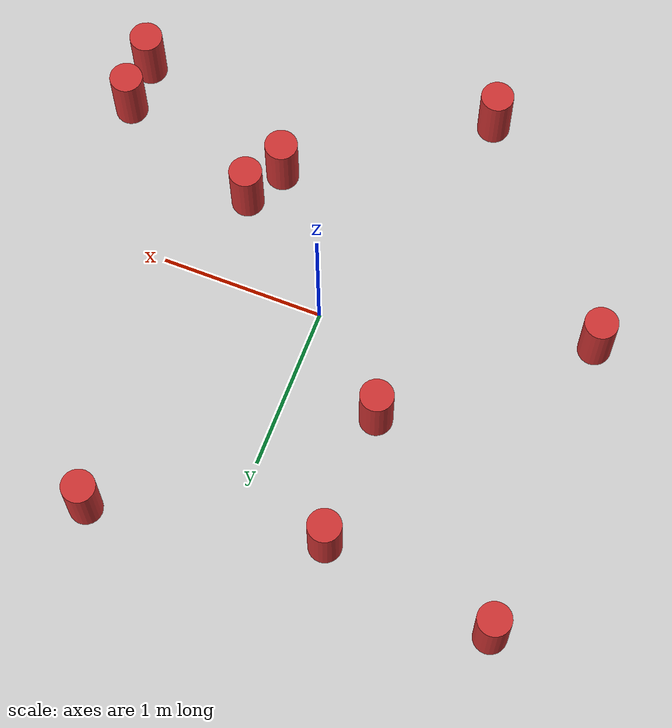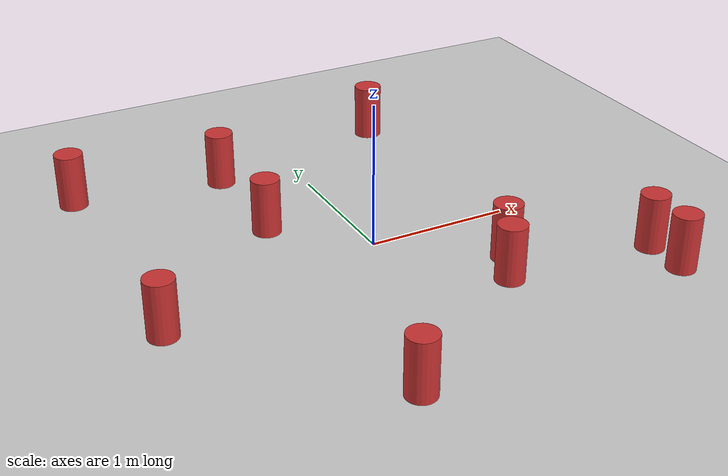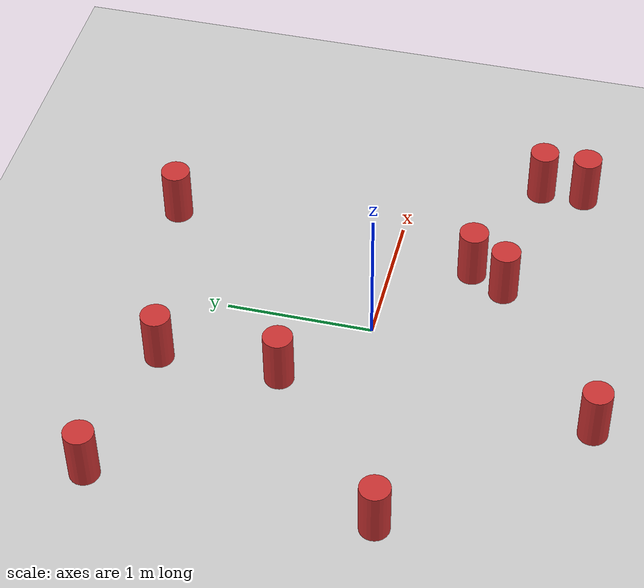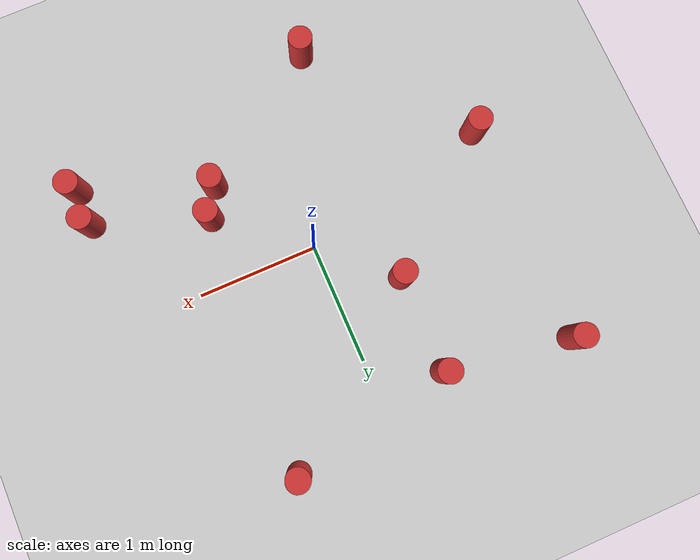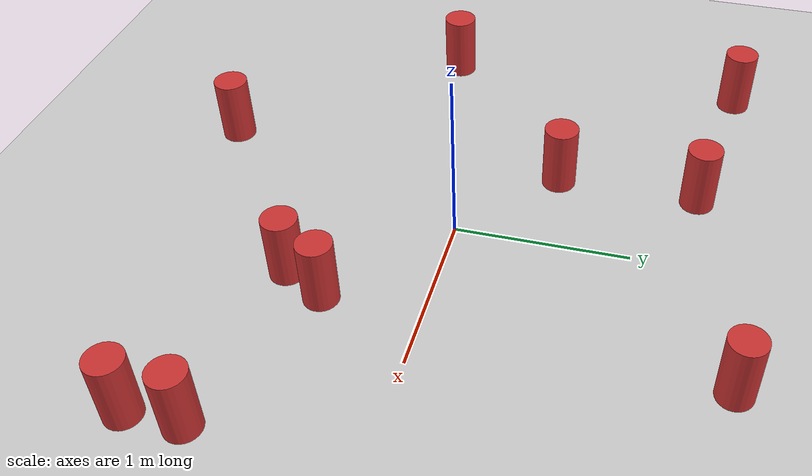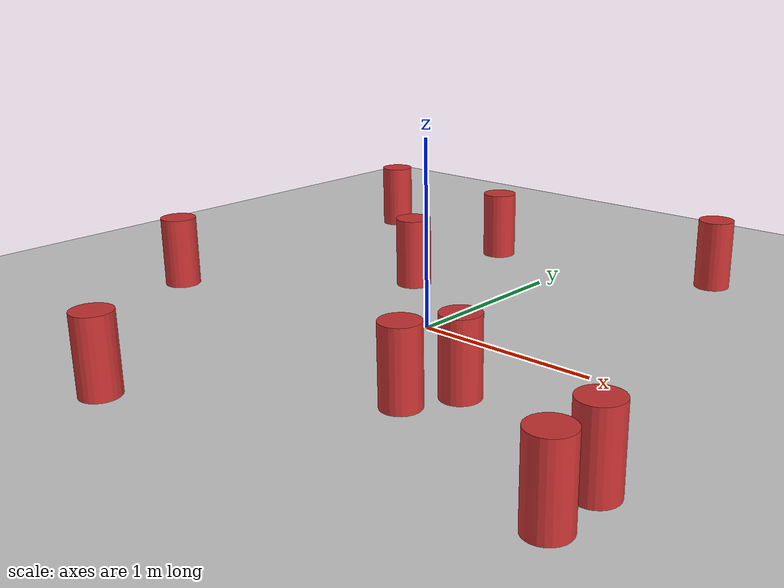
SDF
<sdf version="1.8">
 <world name="default">
  <physics type="ode">
   <real_time_update_rate>1000.0</real_time_update_rate>
   <max_step_size>0.001</max_step_size>
   <real_time_factor>1</real_time_factor>
   <ode>
    <solver>
     <type>quick</type>
     <iters>150</iters>
     <precon_iters>0</precon_iters>
     <sor>1.400000</sor>
     <use_dynamic_moi_rescaling>1</use_dynamic_moi_rescaling>
    </solver>
    <constraints>
     <cfm>0.00001</cfm>
     <erp>0.2</erp>
     <contact_max_correcting_vel>2000.000000</contact_max_correcting_vel>
     <contact_surface_layer>0.01000</contact_surface_layer>
    </constraints>
   </ode>
  </physics>
  <plugin filename="gz-sim-physics-system" name="gz::sim::systems::Physics"/>
  <plugin filename="gz-sim-user-commands-system" name="gz::sim::systems::UserCommands"/>
  <plugin filename="gz-sim-scene-broadcaster-system" name="gz::sim::systems::SceneBroadcaster"/>
  <plugin filename="gz-sim-sensors-system" name="gz::sim::systems::Sensors">
   <render_engine>ogre2</render_engine>
  </plugin>
  <plugin filename="gz-sim-imu-system" name="gz::sim::systems::Imu"/>
  <include><uri>https://fuel.gazebosim.org/1.0/OpenRobotics/models/Ground Plane</uri></include>
  <include><uri>https://fuel.gazebosim.org/1.0/OpenRobotics/models/Sun</uri></include>
  <model name="cylinder_0">
   <static>true</static>
   <pose>-0.550 0.500 0.200 0 0 0</pose>
   <link name="body">
    <kinematic>true</kinematic>
    <gravity>false</gravity>
    <inertial>
     <mass>1000.0</mass>
     <inertia><ixx>10.0</ixx><iyy>10.0</iyy><izz>10.0</izz><ixy>0</ixy><ixz>0</ixz><iyz>0</iyz></inertia>
    </inertial>
    <collision name="collision">
     <geometry><cylinder><radius>0.1</radius><length>0.4</length></cylinder></geometry>
    </collision>
    <visual name="visual">
     <geometry><cylinder><radius>0.1</radius><length>0.4</length></cylinder></geometry>
     <material><ambient>0.8 0.2 0.2 1</ambient><diffuse>0.8 0.2 0.2 1</diffuse></material>
    </visual>
   </link>
  </model>
  <model name="cylinder_1">
   <static>true</static>
   <pose>-0.550 1.321 0.200 0 0 0</pose>
   <link name="body">
    <kinematic>true</kinematic>
    <gravity>false</gravity>
    <inertial>
     <mass>1000.0</mass>
     <inertia><ixx>10.0</ixx><iyy>10.0</iyy><izz>10.0</izz><ixy>0</ixy><ixz>0</ixz><iyz>0</iyz></inertia>
    </inertial>
    <collision name="collision">
     <geometry><cylinder><radius>0.1</radius><length>0.4</length></cylinder></geometry>
    </collision>
    <visual name="visual">
     <geometry><cylinder><radius>0.1</radius><length>0.4</length></cylinder></geometry>
     <material><ambient>0.8 0.2 0.2 1</ambient><diffuse>0.8 0.2 0.2 1</diffuse></material>
    </visual>
   </link>
  </model>
  <model name="cylinder_2">
   <static>true</static>
   <pose>-1.600 -0.379 0.200 0 0 0</pose>
   <link name="body">
    <kinematic>true</kinematic>
    <gravity>false</gravity>
    <inertial>
     <mass>1000.0</mass>
     <inertia><ixx>10.0</ixx><iyy>10.0</iyy><izz>10.0</izz><ixy>0</ixy><ixz>0</ixz><iyz>0</iyz></inertia>
    </inertial>
    <collision name="collision">
     <geometry><cylinder><radius>0.1</radius><length>0.4</length></cylinder></geometry>
    </collision>
    <visual name="visual">
     <geometry><cylinder><radius>0.1</radius><length>0.4</length></cylinder></geometry>
     <material><ambient>0.8 0.2 0.2 1</ambient><diffuse>0.8 0.2 0.2 1</diffuse></material>
    </visual>
   </link>
  </model>
  <model name="cylinder_3">
   <static>true</static>
   <pose>0.682 -0.550 0.200 0 0 0</pose>
   <link name="body">
    <kinematic>true</kinematic>
    <gravity>false</gravity>
    <inertial>
     <mass>1000.0</mass>
     <inertia><ixx>10.0</ixx><iyy>10.0</iyy><izz>10.0</izz><ixy>0</ixy><ixz>0</ixz><iyz>0</iyz></inertia>
    </inertial>
    <collision name="collision">
     <geometry><cylinder><radius>0.1</radius><length>0.4</length></cylinder></geometry>
    </collision>
    <visual name="visual">
     <geometry><cylinder><radius>0.1</radius><length>0.4</length></cylinder></geometry>
     <material><ambient>0.8 0.2 0.2 1</ambient><diffuse>0.8 0.2 0.2 1</diffuse></material>
    </visual>
   </link>
  </model>
  <model name="cylinder_4">
   <static>true</static>
   <pose>1.600 -1.191 0.200 0 0 0</pose>
   <link name="body">
    <kinematic>true</kinematic>
    <gravity>false</gravity>
    <inertial>
     <mass>1000.0</mass>
     <inertia><ixx>10.0</ixx><iyy>10.0</iyy><izz>10.0</izz><ixy>0</ixy><ixz>0</ixz><iyz>0</iyz></inertia>
    </inertial>
    <collision name="collision">
     <geometry><cylinder><radius>0.1</radius><length>0.4</length></cylinder></geometry>
    </collision>
    <visual name="visual">
     <geometry><cylinder><radius>0.1</radius><length>0.4</length></cylinder></geometry>
     <material><ambient>0.8 0.2 0.2 1</ambient><diffuse>0.8 0.2 0.2 1</diffuse></material>
    </visual>
   </link>
  </model>
  <model name="cylinder_5">
   <static>true</static>
   <pose>-1.600 1.482 0.200 0 0 0</pose>
   <link name="body">
    <kinematic>true</kinematic>
    <gravity>false</gravity>
    <inertial>
     <mass>1000.0</mass>
     <inertia><ixx>10.0</ixx><iyy>10.0</iyy><izz>10.0</izz><ixy>0</ixy><ixz>0</ixz><iyz>0</iyz></inertia>
    </inertial>
    <collision name="collision">
     <geometry><cylinder><radius>0.1</radius><length>0.4</length></cylinder></geometry>
    </collision>
    <visual name="visual">
     <geometry><cylinder><radius>0.1</radius><length>0.4</length></cylinder></geometry>
     <material><ambient>0.8 0.2 0.2 1</ambient><diffuse>0.8 0.2 0.2 1</diffuse></material>
    </visual>
   </link>
  </model>
  <model name="cylinder_6">
   <static>true</static>
   <pose>1.600 -0.885 0.200 0 0 0</pose>
   <link name="body">
    <kinematic>true</kinematic>
    <gravity>false</gravity>
    <inertial>
     <mass>1000.0</mass>
     <inertia><ixx>10.0</ixx><iyy>10.0</iyy><izz>10.0</izz><ixy>0</ixy><ixz>0</ixz><iyz>0</iyz></inertia>
    </inertial>
    <collision name="collision">
     <geometry><cylinder><radius>0.1</radius><length>0.4</length></cylinder></geometry>
    </collision>
    <visual name="visual">
     <geometry><cylinder><radius>0.1</radius><length>0.4</length></cylinder></geometry>
     <material><ambient>0.8 0.2 0.2 1</ambient><diffuse>0.8 0.2 0.2 1</diffuse></material>
    </visual>
   </link>
  </model>
  <model name="cylinder_7">
   <static>true</static>
   <pose>0.550 -0.793 0.200 0 0 0</pose>
   <link name="body">
    <kinematic>true</kinematic>
    <gravity>false</gravity>
    <inertial>
     <mass>1000.0</mass>
     <inertia><ixx>10.0</ixx><iyy>10.0</iyy><izz>10.0</izz><ixy>0</ixy><ixz>0</ixz><iyz>0</iyz></inertia>
    </inertial>
    <collision name="collision">
     <geometry><cylinder><radius>0.1</radius><length>0.4</length></cylinder></geometry>
    </collision>
    <visual name="visual">
     <geometry><cylinder><radius>0.1</radius><length>0.4</length></cylinder></geometry>
     <material><ambient>0.8 0.2 0.2 1</ambient><diffuse>0.8 0.2 0.2 1</diffuse></material>
    </visual>
   </link>
  </model>
  <model name="cylinder_8">
   <static>true</static>
   <pose>0.810 1.600 0.200 0 0 0</pose>
   <link name="body">
    <kinematic>true</kinematic>
    <gravity>false</gravity>
    <inertial>
     <mass>1000.0</mass>
     <inertia><ixx>10.0</ixx><iyy>10.0</iyy><izz>10.0</izz><ixy>0</ixy><ixz>0</ixz><iyz>0</iyz></inertia>
    </inertial>
    <collision name="collision">
     <geometry><cylinder><radius>0.1</radius><length>0.4</length></cylinder></geometry>
    </collision>
    <visual name="visual">
     <geometry><cylinder><radius>0.1</radius><length>0.4</length></cylinder></geometry>
     <material><ambient>0.8 0.2 0.2 1</ambient><diffuse>0.8 0.2 0.2 1</diffuse></material>
    </visual>
   </link>
  </model>
  <model name="cylinder_9">
   <static>true</static>
   <pose>-0.550 -1.569 0.200 0 0 0</pose>
   <link name="body">
    <kinematic>true</kinematic>
    <gravity>false</gravity>
    <inertial>
     <mass>1000.0</mass>
     <inertia><ixx>10.0</ixx><iyy>10.0</iyy><izz>10.0</izz><ixy>0</ixy><ixz>0</ixz><iyz>0</iyz></inertia>
    </inertial>
    <collision name="collision">
     <geometry><cylinder><radius>0.1</radius><length>0.4</length></cylinder></geometry>
    </collision>
    <visual name="visual">
     <geometry><cylinder><radius>0.1</radius><length>0.4</length></cylinder></geometry>
     <material><ambient>0.8 0.2 0.2 1</ambient><diffuse>0.8 0.2 0.2 1</diffuse></material>
    </visual>
   </link>
  </model>
 </world>
</sdf>
